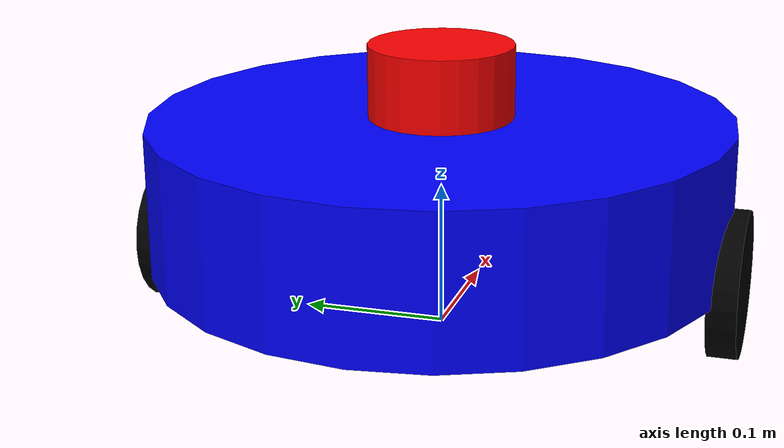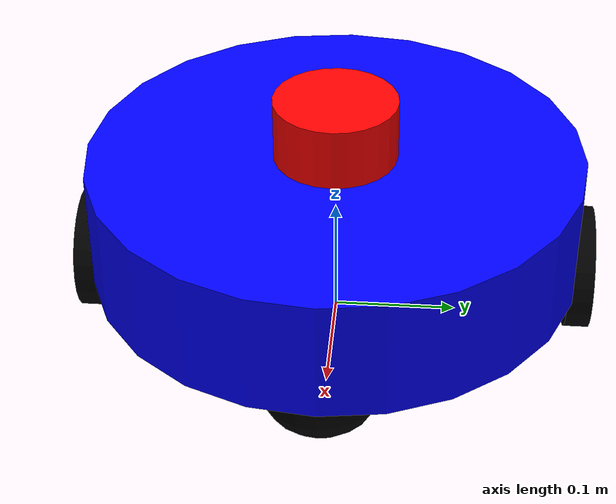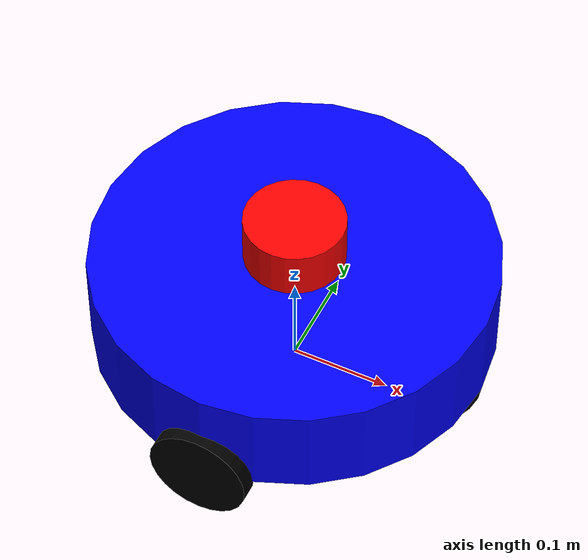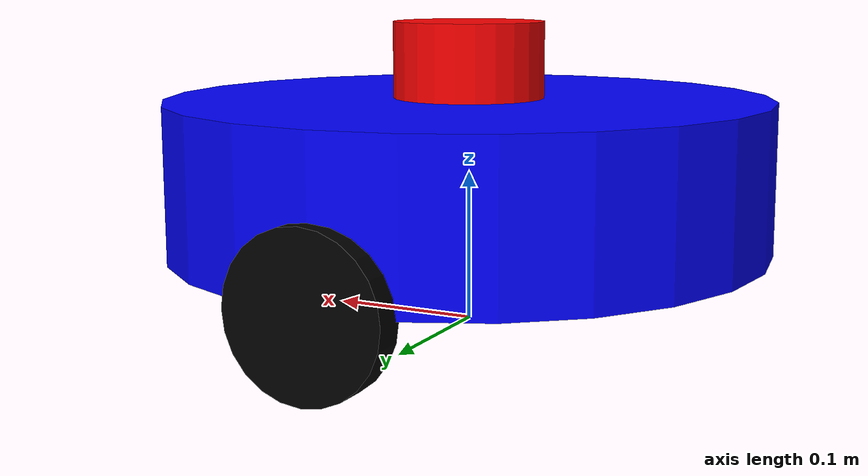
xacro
<?xml version="1.0"?>
<robot xmlns:xacro="http://www.ros.org/wiki/xacro" name="warehouse_robot">

  <xacro:property name="base_radius" value="0.2"/>
  <xacro:property name="base_height" value="0.1"/>
  <xacro:property name="wheel_radius" value="0.05"/>
  <xacro:property name="wheel_width" value="0.02"/>
  <xacro:property name="lidar_radius" value="0.05"/>
  <xacro:property name="lidar_height" value="0.05"/>

  <!-- Base Link -->
  <link name="base_link">
    <visual>
      <geometry>
        <cylinder length="${base_height}" radius="${base_radius}"/>
      </geometry>
      <material name="blue">
        <color rgba="0 0 1 1"/>
      </material>
    </visual>
    <collision>
      <geometry>
        <cylinder length="${base_height}" radius="${base_radius}"/>
      </geometry>
    </collision>
    <inertial>
      <mass value="5.0"/>
      <inertia ixx="0.1" ixy="0.0" ixz="0.0" iyy="0.1" iyz="0.0" izz="0.1"/>
    </inertial>
  </link>

  <!-- Robot Footprint -->
  <link name="base_footprint"/>
  <joint name="base_joint" type="fixed">
    <parent link="base_footprint"/>
    <child link="base_link"/>
    <origin xyz="0 0 ${base_height/2 + wheel_radius}" rpy="0 0 0"/>
  </joint>

  <!-- Wheels -->
  <xacro:macro name="wheel" params="name x y">
    <link name="${name}_wheel">
      <visual>
        <geometry>
          <cylinder length="${wheel_width}" radius="${wheel_radius}"/>
        </geometry>
        <material name="black">
          <color rgba="0 0 0 1"/>
        </material>
      </visual>
      <collision>
        <geometry>
          <cylinder length="${wheel_width}" radius="${wheel_radius}"/>
        </geometry>
      </collision>
      <inertial>
        <mass value="0.5"/>
        <inertia ixx="0.01" ixy="0.0" ixz="0.0" iyy="0.01" iyz="0.0" izz="0.01"/>
      </inertial>
    </link>
    <joint name="${name}_wheel_joint" type="continuous">
      <parent link="base_link"/>
      <child link="${name}_wheel"/>
      <origin xyz="${x} ${y} -${base_height/2}" rpy="${pi/2} 0 0"/>
      <axis xyz="0 0 -1"/>
    </joint>
  </xacro:macro>

  <xacro:wheel name="left" x="0" y="${base_radius}"/>
  <xacro:wheel name="right" x="0" y="-${base_radius}"/>

  <link name="caster_wheel">
    <visual>
        <geometry>
            <sphere radius="${wheel_radius}"/>
        </geometry>
        <material name="black"/>
    </visual>
    <collision>
        <geometry>
            <sphere radius="${wheel_radius}"/>
        </geometry>
    </collision>
    <inertial>
        <mass value="0.1"/>
        <inertia ixx="0.001" ixy="0" ixz="0" iyy="0.001" iyz="0" izz="0.001"/>
    </inertial>
  </link>

  <joint name="caster_wheel_joint" type="fixed">
    <parent link="base_link"/>
    <child link="caster_wheel"/>
    <origin xyz="${base_radius - wheel_radius} 0 -${base_height/2}" rpy="0 0 0"/>
  </joint>

  <!-- Lidar -->
  <link name="laser_frame">
    <visual>
      <geometry>
        <cylinder length="${lidar_height}" radius="${lidar_radius}"/>
      </geometry>
      <material name="red">
        <color rgba="1 0 0 1"/>
      </material>
    </visual>
    <collision>
      <geometry>
        <cylinder length="${lidar_height}" radius="${lidar_radius}"/>
      </geometry>
    </collision>
    <inertial>
      <mass value="0.1"/>
      <inertia ixx="0.001" ixy="0.0" ixz="0.0" iyy="0.001" iyz="0.0" izz="0.001"/>
    </inertial>
  </link>

  <joint name="lidar_joint" type="fixed">
    <parent link="base_link"/>
    <child link="laser_frame"/>
    <origin xyz="0 0 ${base_height/2 + lidar_height/2}" rpy="0 0 0"/>
  </joint>

  <!-- Diff Drive Plugin -->
  <gazebo>
    <plugin name="diff_drive" filename="libgazebo_ros_diff_drive.so">
      <ros>
        <namespace>/</namespace>
      </ros>
      <left_joint>left_wheel_joint</left_joint>
      <right_joint>right_wheel_joint</right_joint>
      <wheel_separation>${base_radius*2}</wheel_separation>
      <wheel_diameter>${wheel_radius*2}</wheel_diameter>
      <max_wheel_torque>10</max_wheel_torque>
      <max_wheel_acceleration>1.0</max_wheel_acceleration>
      <publish_odom>true</publish_odom>
      <publish_odom_tf>true</publish_odom_tf>
      <publish_wheel_tf>true</publish_wheel_tf>
      <odometry_frame>odom</odometry_frame>
      <robot_base_frame>base_footprint</robot_base_frame>
    </plugin>
  </gazebo>

  <gazebo>
      <plugin name="gazebo_ros_joint_state_publisher"
          filename="libgazebo_ros_joint_state_publisher.so">
          <update_rate>10</update_rate>
          <joint_name>left_wheel_joint</joint_name>
          <joint_name>right_wheel_joint</joint_name>
      </plugin>
  </gazebo>

  <!-- Lidar Plugin -->
  <gazebo reference="laser_frame">
    <sensor name="lidar" type="ray">
      <always_on>true</always_on>
      <visualize>true</visualize>
      <update_rate>5</update_rate>
      <ray>
        <scan>
          <horizontal>
            <samples>360</samples>
            <resolution>1</resolution>
            <min_angle>0.0</min_angle>
            <max_angle>6.28</max_angle>
          </horizontal>
        </scan>
        <range>
          <min>0.22</min>
          <max>25.0</max>
          <resolution>0.015</resolution>
        </range>
        <noise>
          <type>gaussian</type>
          <mean>0.0</mean>
          <stddev>0.01</stddev>
        </noise>
      </ray>
      <plugin name="scan" filename="libgazebo_ros_ray_sensor.so">
        <ros>
          <remapping>~/out:=scan</remapping>
        </ros>
        <output_type>sensor_msgs/LaserScan</output_type>
        <frame_name>laser_frame</frame_name>
      </plugin>
    </sensor>
  </gazebo>

</robot>
